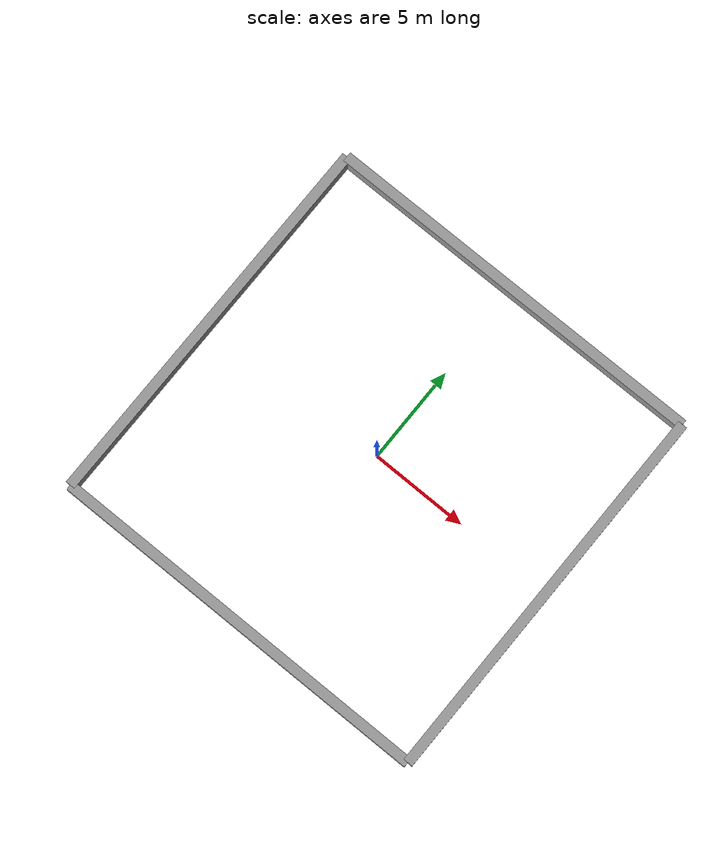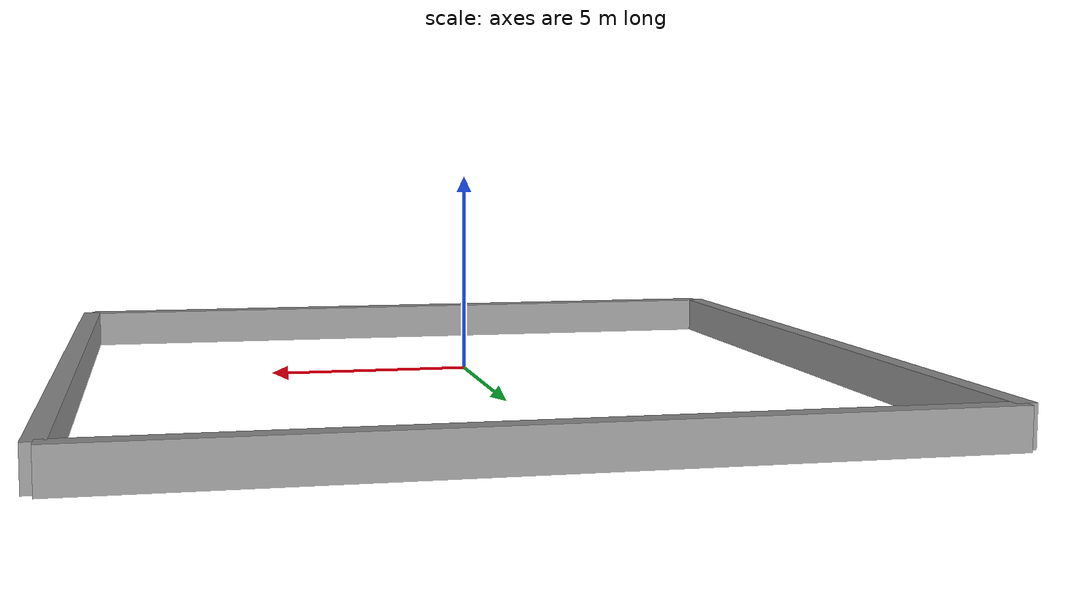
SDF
<?xml version='1.0'?>
<sdf version='1.6'>
  <model name='room_simplestOne'>
<pose frame=''>-10 0 0 0 -0 0</pose>
    <link name='link'>
      <pose frame=''>0 0 0 0 -0 0</pose>
      <inertial>
        <mass>20.0619</mass>
        <inertia>
          <ixx>674.551</ixx>
          <ixy>0</ixy>
          <ixz>0</ixz>
          <iyy>3.34366</iyy>
          <iyz>0</iyz>
          <izz>674.551</izz>
        </inertia>
        <pose frame=''>0 0 0 0 -0 0</pose>
      </inertial>
      <self_collide>0</self_collide>
      <kinematic>0</kinematic>
      <visual name='visual'>
        <geometry>
          <box>
            <size>0.5 20.0 1</size>
          </box>
        </geometry>
        <material>
          <script>
            <name>Gazebo/Grey</name>
            <uri>file://media/materials/scripts/gazebo.material</uri>
          </script>
          <ambient>0.3 0.3 0.3 1</ambient>
          <diffuse>0.7 0.7 0.7 1</diffuse>
          <specular>0.01 0.01 0.01 1</specular>
          <emissive>0 0 0 1</emissive>
        </material>
        <pose frame=''>0 0 0 0 -0 0</pose>
        <transparency>0</transparency>
        <cast_shadows>1</cast_shadows>
      </visual>
      <collision name='collision'>
        <laser_retro>0</laser_retro>
        <max_contacts>10</max_contacts>
        <pose frame=''>0 0 0 0 -0 0</pose>
        <geometry>
          <box>
            <size>0.5 20.0 1</size>
          </box>
        </geometry>
        <surface>
          <friction>
            <ode>
              <mu>1</mu>
              <mu2>1</mu2>
              <fdir1>0 0 0</fdir1>
              <slip1>0</slip1>
              <slip2>0</slip2>
            </ode>
            <torsional>
              <coefficient>1</coefficient>
              <patch_radius>0</patch_radius>
              <surface_radius>0</surface_radius>
              <use_patch_radius>1</use_patch_radius>
              <ode>
                <slip>0</slip>
              </ode>
            </torsional>
          </friction>
          <bounce>
            <restitution_coefficient>0</restitution_coefficient>
            <threshold>1e+06</threshold>
          </bounce>
          <contact>
            <collide_without_contact>0</collide_without_contact>
            <collide_without_contact_bitmask>1</collide_without_contact_bitmask>
            <collide_bitmask>1</collide_bitmask>
            <ode>
              <soft_cfm>0</soft_cfm>
              <soft_erp>0.2</soft_erp>
              <kp>1e+13</kp>
              <kd>1</kd>
              <max_vel>0.01</max_vel>
              <min_depth>0</min_depth>
            </ode>
            <bullet>
              <split_impulse>1</split_impulse>
              <split_impulse_penetration_threshold>-0.01</split_impulse_penetration_threshold>
              <soft_cfm>0</soft_cfm>
              <soft_erp>0.2</soft_erp>
              <kp>1e+13</kp>
              <kd>1</kd>
            </bullet>
          </contact>
        </surface>
      </collision>
    </link>

    <link name='link_0'>
      <pose frame=''>10 10 0 0 -0 0</pose>
      <inertial>
        <mass>20</mass>
        <inertia>
          <ixx>3.18262</ixx>
          <ixy>0</ixy>
          <ixz>0</ixz>
          <iyy>581.858</iyy>
          <iyz>0</iyz>
          <izz>581.858</izz>
        </inertia>
        <pose frame=''>0 0 0 0 -0 0</pose>
      </inertial>
      <visual name='visual'>
        <pose frame=''>0 0 0 0 -0 0</pose>
        <geometry>
          <box>
            <size>20 0.5 1</size>
          </box>
        </geometry>
        <material>
          <lighting>1</lighting>
          <script>
            <uri>file://media/materials/scripts/gazebo.material</uri>
            <name>Gazebo/Grey</name>
          </script>
          <ambient>0.3 0.3 0.3 1</ambient>
          <diffuse>0.7 0.7 0.7 1</diffuse>
          <specular>0.01 0.01 0.01 1</specular>
          <emissive>0 0 0 1</emissive>
        </material>
        <transparency>0</transparency>
        <cast_shadows>1</cast_shadows>
      </visual>
      <collision name='collision'>
        <laser_retro>0</laser_retro>
        <max_contacts>10</max_contacts>
        <pose frame=''>0 0 0 0 -0 0</pose>
        <geometry>
          <box>
            <size>20 0.5 1</size>
          </box>
        </geometry>
        <surface>
          <friction>
            <ode>
              <mu>1</mu>
              <mu2>1</mu2>
              <fdir1>0 0 0</fdir1>
              <slip1>0</slip1>
              <slip2>0</slip2>
            </ode>
            <torsional>
              <coefficient>1</coefficient>
              <patch_radius>0</patch_radius>
              <surface_radius>0</surface_radius>
              <use_patch_radius>1</use_patch_radius>
              <ode>
                <slip>0</slip>
              </ode>
            </torsional>
          </friction>
          <bounce>
            <restitution_coefficient>0</restitution_coefficient>
            <threshold>1e+06</threshold>
          </bounce>
          <contact>
            <collide_without_contact>0</collide_without_contact>
            <collide_without_contact_bitmask>1</collide_without_contact_bitmask>
            <collide_bitmask>1</collide_bitmask>
            <ode>
              <soft_cfm>0</soft_cfm>
              <soft_erp>0.2</soft_erp>
              <kp>1e+13</kp>
              <kd>1</kd>
              <max_vel>0.01</max_vel>
              <min_depth>0</min_depth>
            </ode>
            <bullet>
              <split_impulse>1</split_impulse>
              <split_impulse_penetration_threshold>-0.01</split_impulse_penetration_threshold>
              <soft_cfm>0</soft_cfm>
              <soft_erp>0.2</soft_erp>
              <kp>1e+13</kp>
              <kd>1</kd>
            </bullet>
          </contact>
        </surface>
      </collision>
    </link>

    <link name='link_1'>
      <pose frame=''>20 0 -0 0 -0 0</pose>
      <inertial>
        <mass>18.076</mass>
        <inertia>
          <ixx>493.69</ixx>
          <ixy>0</ixy>
          <ixz>0</ixz>
          <iyy>3.01267</iyy>
          <iyz>0</iyz>
          <izz>493.69</izz>
        </inertia>
        <pose frame=''>0 0 0 0 -0 0</pose>
      </inertial>
      <visual name='visual'>
        <pose frame=''>0 0 0 0 -0 0</pose>
        <geometry>
          <box>
            <size>0.5 20 1</size>
          </box>
        </geometry>
        <material>
          <lighting>1</lighting>
          <script>
            <uri>file://media/materials/scripts/gazebo.material</uri>
            <name>Gazebo/Grey</name>
          </script>
          <ambient>0.3 0.3 0.3 1</ambient>
          <diffuse>0.7 0.7 0.7 1</diffuse>
          <specular>0.01 0.01 0.01 1</specular>
          <emissive>0 0 0 1</emissive>
        </material>
        <transparency>0</transparency>
        <cast_shadows>1</cast_shadows>
      </visual>
      <collision name='collision'>
        <laser_retro>0</laser_retro>
        <max_contacts>10</max_contacts>
        <pose frame=''>0 0 0 0 -0 0</pose>
        <geometry>
          <box>
            <size>0.5 20 1</size>
          </box>
        </geometry>
        <surface>
          <friction>
            <ode>
              <mu>1</mu>
              <mu2>1</mu2>
              <fdir1>0 0 0</fdir1>
              <slip1>0</slip1>
              <slip2>0</slip2>
            </ode>
            <torsional>
              <coefficient>1</coefficient>
              <patch_radius>0</patch_radius>
              <surface_radius>0</surface_radius>
              <use_patch_radius>1</use_patch_radius>
              <ode>
                <slip>0</slip>
              </ode>
            </torsional>
          </friction>
          <bounce>
            <restitution_coefficient>0</restitution_coefficient>
            <threshold>1e+06</threshold>
          </bounce>
          <contact>
            <collide_without_contact>0</collide_without_contact>
            <collide_without_contact_bitmask>1</collide_without_contact_bitmask>
            <collide_bitmask>1</collide_bitmask>
            <ode>
              <soft_cfm>0</soft_cfm>
              <soft_erp>0.2</soft_erp>
              <kp>1e+13</kp>
              <kd>1</kd>
              <max_vel>0.01</max_vel>
              <min_depth>0</min_depth>
            </ode>
            <bullet>
              <split_impulse>1</split_impulse>
              <split_impulse_penetration_threshold>-0.01</split_impulse_penetration_threshold>
              <soft_cfm>0</soft_cfm>
              <soft_erp>0.2</soft_erp>
              <kp>1e+13</kp>
              <kd>1</kd>
            </bullet>
          </contact>
        </surface>
      </collision>
    </link>

    <link name='link_2'>
      <pose frame=''>10 -10 -0 0 -0 0</pose>
      <inertial>
        <mass>18.8281</mass>
        <inertia>
          <ixx>3.13802</ixx>
          <ixy>0</ixy>
          <ixz>0</ixz>
          <iyy>557.78</iyy>
          <iyz>0</iyz>
          <izz>557.78</izz>
        </inertia>
        <pose frame=''>0 0 0 0 -0 0</pose>
      </inertial>
      <visual name='visual'>
        <pose frame=''>0 0 0 0 -0 0</pose>
        <geometry>
          <box>
            <size>20 0.5 1</size>
          </box>
        </geometry>
        <material>
          <lighting>1</lighting>
          <script>
            <uri>file://media/materials/scripts/gazebo.material</uri>
            <name>Gazebo/Grey</name>
          </script>
          <ambient>0.3 0.3 0.3 1</ambient>
          <diffuse>0.7 0.7 0.7 1</diffuse>
          <specular>0.01 0.01 0.01 1</specular>
          <emissive>0 0 0 1</emissive>
        </material>
        <transparency>0</transparency>
        <cast_shadows>1</cast_shadows>
      </visual>
      <collision name='collision'>
        <laser_retro>0</laser_retro>
        <max_contacts>10</max_contacts>
        <pose frame=''>0 0 0 0 -0 0</pose>
        <geometry>
          <box>
            <size>20 0.5 1</size>
          </box>
        </geometry>
        <surface>
          <friction>
            <ode>
              <mu>1</mu>
              <mu2>1</mu2>
              <fdir1>0 0 0</fdir1>
              <slip1>0</slip1>
              <slip2>0</slip2>
            </ode>
            <torsional>
              <coefficient>1</coefficient>
              <patch_radius>0</patch_radius>
              <surface_radius>0</surface_radius>
              <use_patch_radius>1</use_patch_radius>
              <ode>
                <slip>0</slip>
              </ode>
            </torsional>
          </friction>
          <bounce>
            <restitution_coefficient>0</restitution_coefficient>
            <threshold>1e+06</threshold>
          </bounce>
          <contact>
            <collide_without_contact>0</collide_without_contact>
            <collide_without_contact_bitmask>1</collide_without_contact_bitmask>
            <collide_bitmask>1</collide_bitmask>
            <ode>
              <soft_cfm>0</soft_cfm>
              <soft_erp>0.2</soft_erp>
              <kp>1e+13</kp>
              <kd>1</kd>
              <max_vel>0.01</max_vel>
              <min_depth>0</min_depth>
            </ode>
            <bullet>
              <split_impulse>1</split_impulse>
              <split_impulse_penetration_threshold>-0.01</split_impulse_penetration_threshold>
              <soft_cfm>0</soft_cfm>
              <soft_erp>0.2</soft_erp>
              <kp>1e+13</kp>
              <kd>1</kd>
            </bullet>
          </contact>
        </surface>
      </collision>
    </link>
    <joint name='link_0_JOINT_1' type='screw'>
      <parent>link_0</parent>
      <child>link_1</child>
      <pose frame=''>0 0 0 0 -0 0</pose>
      <axis>
        <xyz>1 0 0</xyz>
        <use_parent_model_frame>0</use_parent_model_frame>
        <limit>
          <lower>-1.79769e+308</lower>
          <upper>1.79769e+308</upper>
          <effort>-1</effort>
          <velocity>-1</velocity>
        </limit>
        <dynamics>
          <spring_reference>0</spring_reference>
          <spring_stiffness>0</spring_stiffness>
          <damping>0</damping>
        </dynamics>
      </axis>
      <physics>
        <ode>
          <limit>
            <cfm>0</cfm>
            <erp>0.2</erp>
          </limit>
          <suspension>
            <cfm>0</cfm>
            <erp>0.2</erp>
          </suspension>
        </ode>
      </physics>
    </joint>
    <joint name='link_0_JOINT_2' type='screw'>
      <parent>link_0</parent>
      <child>link_2</child>
      <pose frame=''>0 0 0 0 -0 0</pose>
      <axis>
        <xyz>1 0 0</xyz>
        <use_parent_model_frame>0</use_parent_model_frame>
        <limit>
          <lower>-1.79769e+308</lower>
          <upper>1.79769e+308</upper>
          <effort>-1</effort>
          <velocity>-1</velocity>
        </limit>
        <dynamics>
          <spring_reference>0</spring_reference>
          <spring_stiffness>0</spring_stiffness>
          <damping>0</damping>
        </dynamics>
      </axis>
      <physics>
        <ode>
          <limit>
            <cfm>0</cfm>
            <erp>0.2</erp>
          </limit>
          <suspension>
            <cfm>0</cfm>
            <erp>0.2</erp>
          </suspension>
        </ode>
      </physics>
    </joint>
    <joint name='link_JOINT_0' type='screw'>
      <parent>link</parent>
      <child>link_0</child>
      <pose frame=''>0 0 0 0 -0 0</pose>
      <axis>
        <xyz>1 0 0</xyz>
        <use_parent_model_frame>0</use_parent_model_frame>
        <limit>
          <lower>-1.79769e+308</lower>
          <upper>1.79769e+308</upper>
          <effort>-1</effort>
          <velocity>-1</velocity>
        </limit>
        <dynamics>
          <spring_reference>0</spring_reference>
          <spring_stiffness>0</spring_stiffness>
          <damping>0</damping>
        </dynamics>
      </axis>
      <physics>
        <ode>
          <limit>
            <cfm>0</cfm>
            <erp>0.2</erp>
          </limit>
          <suspension>
            <cfm>0</cfm>
            <erp>0.2</erp>
          </suspension>
        </ode>
      </physics>
    </joint>
    <static>0</static>
    <allow_auto_disable>1</allow_auto_disable>
  </model>
</sdf>
